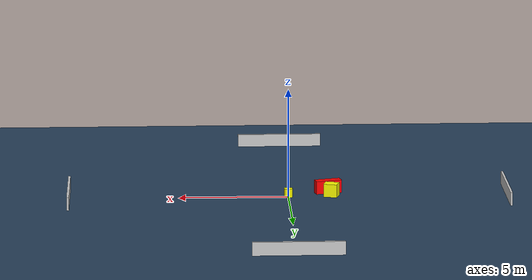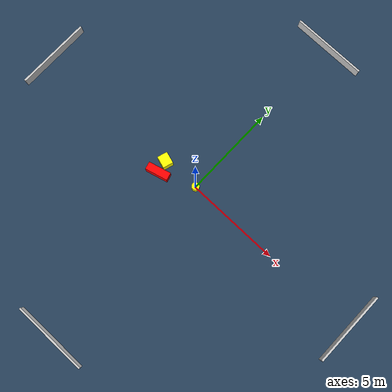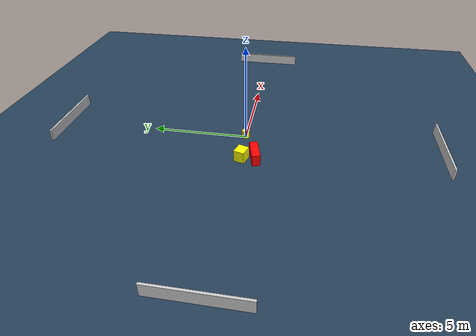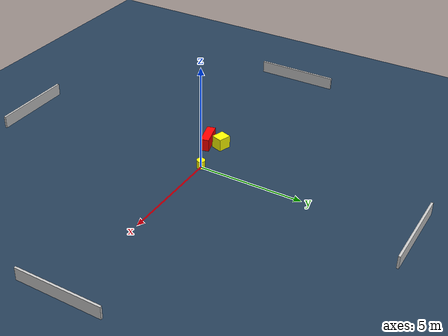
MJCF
<?xml version="1.0" ?>
<mujoco model="generated_environment">
  <option timestep="0.01" integrator="RK4" cone="elliptic"/>
  <default>
    <geom density="1"/>
  </default>
  <asset>
    <texture builtin="gradient" height="3072" name="skybox" rgb1="0.3 0.5 0.7" rgb2="0 0 0" type="skybox" width="512"/>
    <texture builtin="checker" height="300" name="groundplane" rgb1="0.2 0.3 0.4" rgb2="0.1 0.2 0.3" type="2d" width="300"/>
    <material name="groundplane" reflectance="0.2" texrepeat="5 5" texture="groundplane"/>
  </asset>
  <worldbody>
    <light dir="0 0 -1" directional="true" pos="0 0 1.5"/>
    <geom condim="3" friction="0.5 0.005 0.001" material="groundplane" name="floor" pos="0 0 0" size="0 0 0.05" type="plane"/>
    <body name="walls">
      <geom name="wall_1" condim="4" pos="-10.0 0.0 0.3" rgba="0.800000011920929 0.800000011920929 0.800000011920929 1.0" size="0.05 2.0 0.3" type="box"/>
      <geom name="wall_2" condim="4" pos="10.0 0.0 0.3" rgba="0.800000011920929 0.800000011920929 0.800000011920929 1.0" size="0.05 2.0 0.3" type="box"/>
      <geom name="wall_3" condim="4" pos="0.0 -10.0 0.3" rgba="0.800000011920929 0.800000011920929 0.800000011920929 1.0" size="2.0 0.05 0.3" type="box"/>
      <geom name="wall_4" condim="4" pos="0.0 10.0 0.3" rgba="0.800000011920929 0.800000011920929 0.800000011920929 1.0" size="2.0 0.05 0.3" type="box"/>
    </body>
    <body name="robot">
      <joint name="joint_x" type="slide" pos="0 0 0" axis="1 0 0"/>
      <joint name="joint_y" type="slide" pos="0 0 0" axis="0 1 0"/>
      <geom name="robot" type="cylinder" pos="0.0 0.0 0.2" size="0.2 0.2 0.0" mass="5.0" friction="1.0 0.005 0.0001" condim="4" rgba="1.0 1.0 0.0 1.0"/>
    </body>
    <body name="obstacle_1_movable">
      <geom name="obstacle_1_movable" condim="4" pos="-1.9778105155607208 -0.09117370083390515 0.3" euler="0 0 72.4214137901572" friction="0.0 0.005 0.001" rgba="1.0 1.0 0.0 1.0" size="0.27110922674024834 0.3112992774330401 0.3" type="box" mass="0.1"/>
      <joint type="free"/>
    </body>
    <body name="obstacle_2_static">
      <geom name="obstacle_2_static" condim="4" pos="-1.8485425291122908 -0.7367258721442818 0.3" euler="0 0 15.015482285146945" friction="0.0 0.005 0.001" rgba="1.0 0.0 0.0 1.0" size="0.6017070186203335 0.20354008894744816 0.3" type="box"/>
    </body>
  </worldbody>
  <actuator>
    <motor name="actuator_x" joint="joint_x" gear="1" ctrlrange="-1 1"/>
    <motor name="actuator_y" joint="joint_y" gear="1" ctrlrange="-1 1"/>
  </actuator>
</mujoco>
